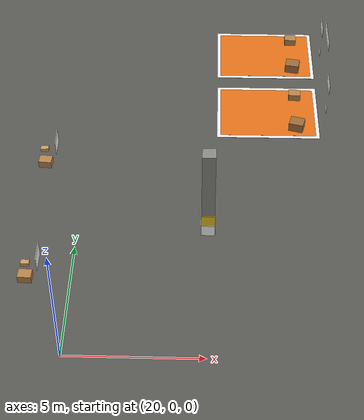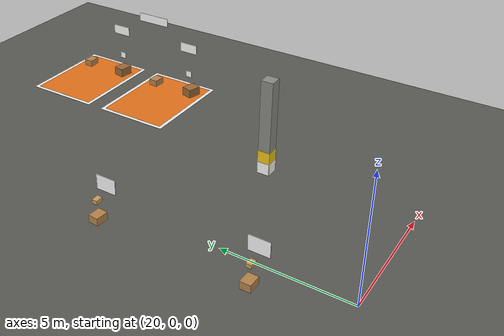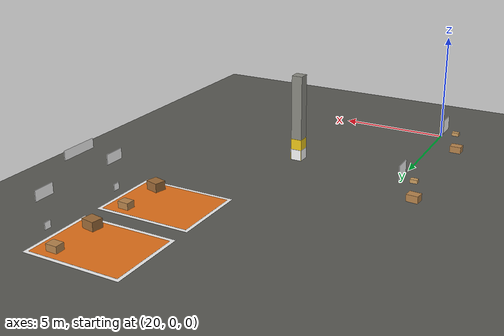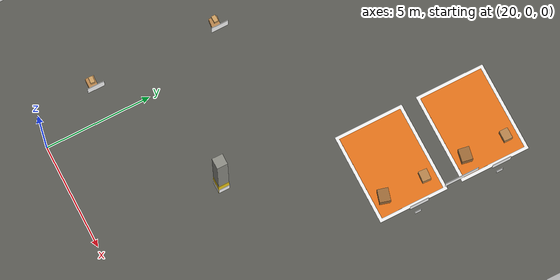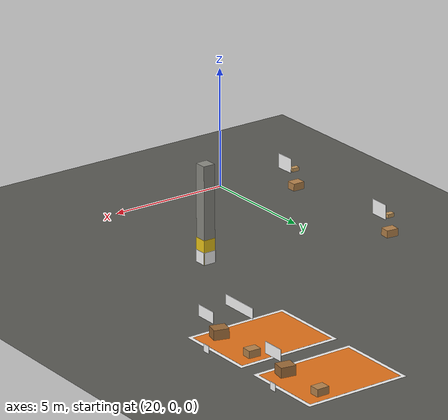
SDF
<sdf version="1.8">
 <world name="warehouse">
  <model name="ground_plane">
   <static>true</static>
   <link name="link">
    <collision name="collision">
     <geometry><plane><normal>0 0 1</normal><size>64 44</size></plane></geometry>
     <surface><friction><ode><mu>0.8</mu><mu2>0.8</mu2></ode></friction></surface>
    </collision>
    <visual name="visual">
     <geometry><plane><normal>0 0 1</normal><size>64 44</size></plane></geometry>
     <material>
      <ambient>0.35 0.35 0.33 1</ambient>
      <diffuse>0.35 0.35 0.33 1</diffuse>
      <specular>0.05 0.05 0.05 1</specular>
     </material>
    </visual>
   </link>
  </model>
  <include>
   <uri>model://pillar</uri>
   <name>pillar_6</name>
   <pose>25.0000 6.0000 0.0000 0.0000 0.0000 0.0000</pose>
  </include>
  <model name="pillar_6_marker_0">
   <static>true</static>
   <pose>25.2620 6.0000 0.0000 0.0000 0.0000 0.0000</pose>
   <link name="link">
    <collision name="plate_collision">
     <pose>0 0 0.250 0 0 0</pose>
     <geometry><box><size>0.02 0.50 0.50</size></box></geometry>
    </collision>
    <visual name="plate">
     <pose>0 0 0.250 0 0 0</pose>
     <geometry><box><size>0.02 0.50 0.50</size></box></geometry>
     <material>
      <ambient>1 1 1 1</ambient>
      <diffuse>1 1 1 1</diffuse>
      <specular>0.05 0.05 0.05 1</specular>
      <pbr>
       <metal>
        <albedo_map>model://dock_marker/materials/textures/aruco_4x4_100_30.png</albedo_map>
        <metalness>0.0</metalness>
        <roughness>0.9</roughness>
       </metal>
      </pbr>
     </material>
    </visual>
   </link>
  </model>
  <model name="pillar_6_marker_1">
   <static>true</static>
   <pose>24.7380 6.0000 0.0000 0.0000 0.0000 3.1416</pose>
   <link name="link">
    <collision name="plate_collision">
     <pose>0 0 0.250 0 0 0</pose>
     <geometry><box><size>0.02 0.50 0.50</size></box></geometry>
    </collision>
    <visual name="plate">
     <pose>0 0 0.250 0 0 0</pose>
     <geometry><box><size>0.02 0.50 0.50</size></box></geometry>
     <material>
      <ambient>1 1 1 1</ambient>
      <diffuse>1 1 1 1</diffuse>
      <specular>0.05 0.05 0.05 1</specular>
      <pbr>
       <metal>
        <albedo_map>model://dock_marker/materials/textures/aruco_4x4_100_31.png</albedo_map>
        <metalness>0.0</metalness>
        <roughness>0.9</roughness>
       </metal>
      </pbr>
     </material>
    </visual>
   </link>
  </model>
  <model name="pillar_6_marker_2">
   <static>true</static>
   <pose>25.0000 6.2620 0.0000 0.0000 0.0000 1.5708</pose>
   <link name="link">
    <collision name="plate_collision">
     <pose>0 0 0.250 0 0 0</pose>
     <geometry><box><size>0.02 0.50 0.50</size></box></geometry>
    </collision>
    <visual name="plate">
     <pose>0 0 0.250 0 0 0</pose>
     <geometry><box><size>0.02 0.50 0.50</size></box></geometry>
     <material>
      <ambient>1 1 1 1</ambient>
      <diffuse>1 1 1 1</diffuse>
      <specular>0.05 0.05 0.05 1</specular>
      <pbr>
       <metal>
        <albedo_map>model://dock_marker/materials/textures/aruco_4x4_100_32.png</albedo_map>
        <metalness>0.0</metalness>
        <roughness>0.9</roughness>
       </metal>
      </pbr>
     </material>
    </visual>
   </link>
  </model>
  <model name="pillar_6_marker_3">
   <static>true</static>
   <pose>25.0000 5.7380 0.0000 0.0000 0.0000 -1.5708</pose>
   <link name="link">
    <collision name="plate_collision">
     <pose>0 0 0.250 0 0 0</pose>
     <geometry><box><size>0.02 0.50 0.50</size></box></geometry>
    </collision>
    <visual name="plate">
     <pose>0 0 0.250 0 0 0</pose>
     <geometry><box><size>0.02 0.50 0.50</size></box></geometry>
     <material>
      <ambient>1 1 1 1</ambient>
      <diffuse>1 1 1 1</diffuse>
      <specular>0.05 0.05 0.05 1</specular>
      <pbr>
       <metal>
        <albedo_map>model://dock_marker/materials/textures/aruco_4x4_100_33.png</albedo_map>
        <metalness>0.0</metalness>
        <roughness>0.9</roughness>
       </metal>
      </pbr>
     </material>
    </visual>
   </link>
  </model>
  <include>
   <uri>model://box_medium</uri>
   <name>rack_A7_box_medium_1</name>
   <pose>18.4870 9.0000 0.5000 0.0000 0.0000 -0.0871</pose>
   <static>true</static>
  </include>
  <include>
   <uri>model://box_small</uri>
   <name>rack_A7_box_small_3</name>
   <pose>18.5148 9.0000 1.2750 0.0000 0.0000 0.0327</pose>
   <static>true</static>
  </include>
  <include>
   <uri>model://box_medium</uri>
   <name>rack_B7_box_medium_1</name>
   <pose>18.4612 3.0000 0.5000 0.0000 0.0000 -0.0196</pose>
   <static>true</static>
  </include>
  <include>
   <uri>model://box_small</uri>
   <name>rack_B7_box_small_3</name>
   <pose>18.5376 3.0000 1.2750 0.0000 0.0000 -0.0710</pose>
   <static>true</static>
  </include>
  <include>
   <uri>model://dock_pad_outbound</uri>
   <name>dock_a_pad</name>
   <pose>27.5000 17.0000 0.0000 0.0000 0.0000 0.0000</pose>
  </include>
  <model name="dock_a_marker">
   <static>true</static>
   <pose>29.9900 17.0000 0.0000 0.0000 0.0000 3.1416</pose>
   <link name="link">
    <collision name="plate_collision">
     <pose>0 0 0.250 0 0 0</pose>
     <geometry><box><size>0.02 0.30 0.30</size></box></geometry>
    </collision>
    <visual name="plate">
     <pose>0 0 0.250 0 0 0</pose>
     <geometry><box><size>0.02 0.30 0.30</size></box></geometry>
     <material>
      <ambient>1 1 1 1</ambient>
      <diffuse>1 1 1 1</diffuse>
      <specular>0.05 0.05 0.05 1</specular>
      <pbr>
       <metal>
        <albedo_map>model://dock_marker/materials/textures/aruco_4x4_100_2.png</albedo_map>
        <metalness>0.0</metalness>
        <roughness>0.9</roughness>
       </metal>
      </pbr>
     </material>
    </visual>
   </link>
  </model>
  <include>
   <uri>model://box_medium</uri>
   <name>dock_a_box_medium</name>
   <pose>28.7000 18.0000 0.0000 0.0000 0.0000 -0.0086</pose>
  </include>
  <include>
   <uri>model://box_large</uri>
   <name>dock_a_box_large</name>
   <pose>28.7000 16.0000 0.0000 0.0000 0.0000 -0.1718</pose>
  </include>
  <include>
   <uri>model://dock_pad_outbound</uri>
   <name>dock_b_pad</name>
   <pose>27.5000 13.0000 0.0000 0.0000 0.0000 0.0000</pose>
  </include>
  <model name="dock_b_marker">
   <static>true</static>
   <pose>29.9900 13.0000 0.0000 0.0000 0.0000 3.1416</pose>
   <link name="link">
    <collision name="plate_collision">
     <pose>0 0 0.250 0 0 0</pose>
     <geometry><box><size>0.02 0.30 0.30</size></box></geometry>
    </collision>
    <visual name="plate">
     <pose>0 0 0.250 0 0 0</pose>
     <geometry><box><size>0.02 0.30 0.30</size></box></geometry>
     <material>
      <ambient>1 1 1 1</ambient>
      <diffuse>1 1 1 1</diffuse>
      <specular>0.05 0.05 0.05 1</specular>
      <pbr>
       <metal>
        <albedo_map>model://dock_marker/materials/textures/aruco_4x4_100_3.png</albedo_map>
        <metalness>0.0</metalness>
        <roughness>0.9</roughness>
       </metal>
      </pbr>
     </material>
    </visual>
   </link>
  </model>
  <include>
   <uri>model://box_medium</uri>
   <name>dock_b_box_medium</name>
   <pose>28.7000 14.0000 0.0000 0.0000 0.0000 -0.0594</pose>
  </include>
  <include>
   <uri>model://box_large</uri>
   <name>dock_b_box_large</name>
   <pose>28.7000 12.0000 0.0000 0.0000 0.0000 -0.2648</pose>
  </include>
  <model name="sign_dock_a">
   <static>true</static>
   <pose>29.9880 17.0000 0.0000 0.0000 0.0000 3.1416</pose>
   <link name="link">
    <visual name="plate">
     <pose>0 0 1.600 0 0 0</pose>
     <geometry><box><size>0.02 0.90 0.45</size></box></geometry>
     <material>
      <ambient>1 1 1 1</ambient>
      <diffuse>1 1 1 1</diffuse>
      <specular>0.05 0.05 0.05 1</specular>
      <pbr>
       <metal>
        <albedo_map>model://sign/materials/textures/sign_dock_a.png</albedo_map>
        <metalness>0.0</metalness>
        <roughness>0.9</roughness>
       </metal>
      </pbr>
     </material>
    </visual>
   </link>
  </model>
  <model name="sign_dock_b">
   <static>true</static>
   <pose>29.9880 13.0000 0.0000 0.0000 0.0000 3.1416</pose>
   <link name="link">
    <visual name="plate">
     <pose>0 0 1.600 0 0 0</pose>
     <geometry><box><size>0.02 0.90 0.45</size></box></geometry>
     <material>
      <ambient>1 1 1 1</ambient>
      <diffuse>1 1 1 1</diffuse>
      <specular>0.05 0.05 0.05 1</specular>
      <pbr>
       <metal>
        <albedo_map>model://sign/materials/textures/sign_dock_b.png</albedo_map>
        <metalness>0.0</metalness>
        <roughness>0.9</roughness>
       </metal>
      </pbr>
     </material>
    </visual>
   </link>
  </model>
  <model name="sign_zone_outbound">
   <static>true</static>
   <pose>29.9880 15.0000 0.0000 0.0000 0.0000 3.1416</pose>
   <link name="link">
    <visual name="plate">
     <pose>0 0 2.600 0 0 0</pose>
     <geometry><box><size>0.02 1.60 0.40</size></box></geometry>
     <material>
      <ambient>1 1 1 1</ambient>
      <diffuse>1 1 1 1</diffuse>
      <specular>0.05 0.05 0.05 1</specular>
      <pbr>
       <metal>
        <albedo_map>model://sign/materials/textures/sign_zone_outbound.png</albedo_map>
        <metalness>0.0</metalness>
        <roughness>0.9</roughness>
       </metal>
      </pbr>
     </material>
    </visual>
   </link>
  </model>
  <model name="sign_zone_a_east">
   <static>true</static>
   <pose>19.0120 9.0000 0.0000 0.0000 0.0000 0.0000</pose>
   <link name="link">
    <visual name="plate">
     <pose>0 0 1.700 0 0 0</pose>
     <geometry><box><size>0.02 0.80 0.60</size></box></geometry>
     <material>
      <ambient>1 1 1 1</ambient>
      <diffuse>1 1 1 1</diffuse>
      <specular>0.05 0.05 0.05 1</specular>
      <pbr>
       <metal>
        <albedo_map>model://sign/materials/textures/sign_zone_a.png</albedo_map>
        <metalness>0.0</metalness>
        <roughness>0.9</roughness>
       </metal>
      </pbr>
     </material>
    </visual>
   </link>
  </model>
  <model name="sign_zone_b_east">
   <static>true</static>
   <pose>19.0120 3.0000 0.0000 0.0000 0.0000 0.0000</pose>
   <link name="link">
    <visual name="plate">
     <pose>0 0 1.700 0 0 0</pose>
     <geometry><box><size>0.02 0.80 0.60</size></box></geometry>
     <material>
      <ambient>1 1 1 1</ambient>
      <diffuse>1 1 1 1</diffuse>
      <specular>0.05 0.05 0.05 1</specular>
      <pbr>
       <metal>
        <albedo_map>model://sign/materials/textures/sign_zone_b.png</albedo_map>
        <metalness>0.0</metalness>
        <roughness>0.9</roughness>
       </metal>
      </pbr>
     </material>
    </visual>
   </link>
  </model>
 </world>
</sdf>
